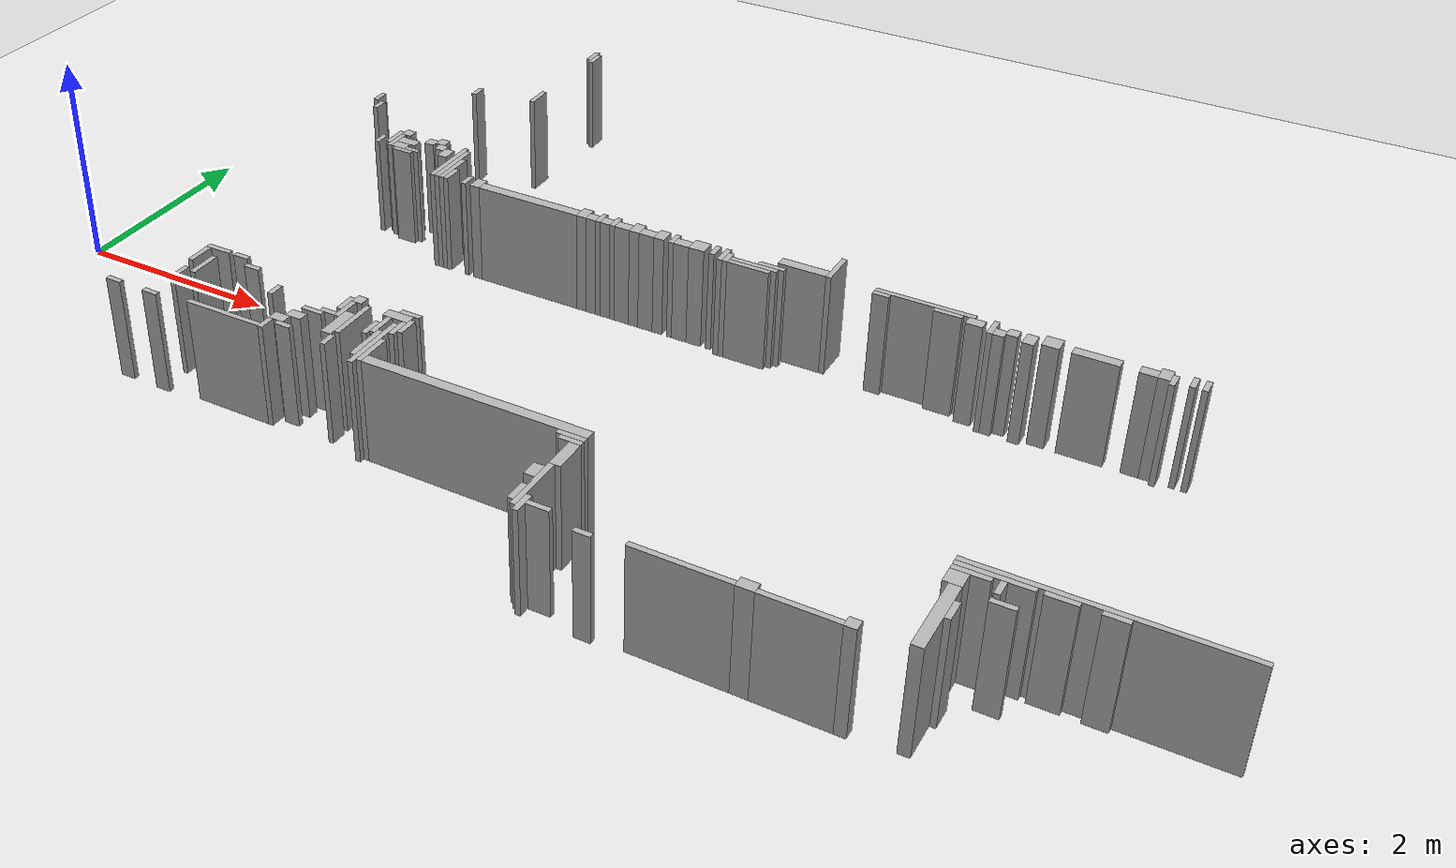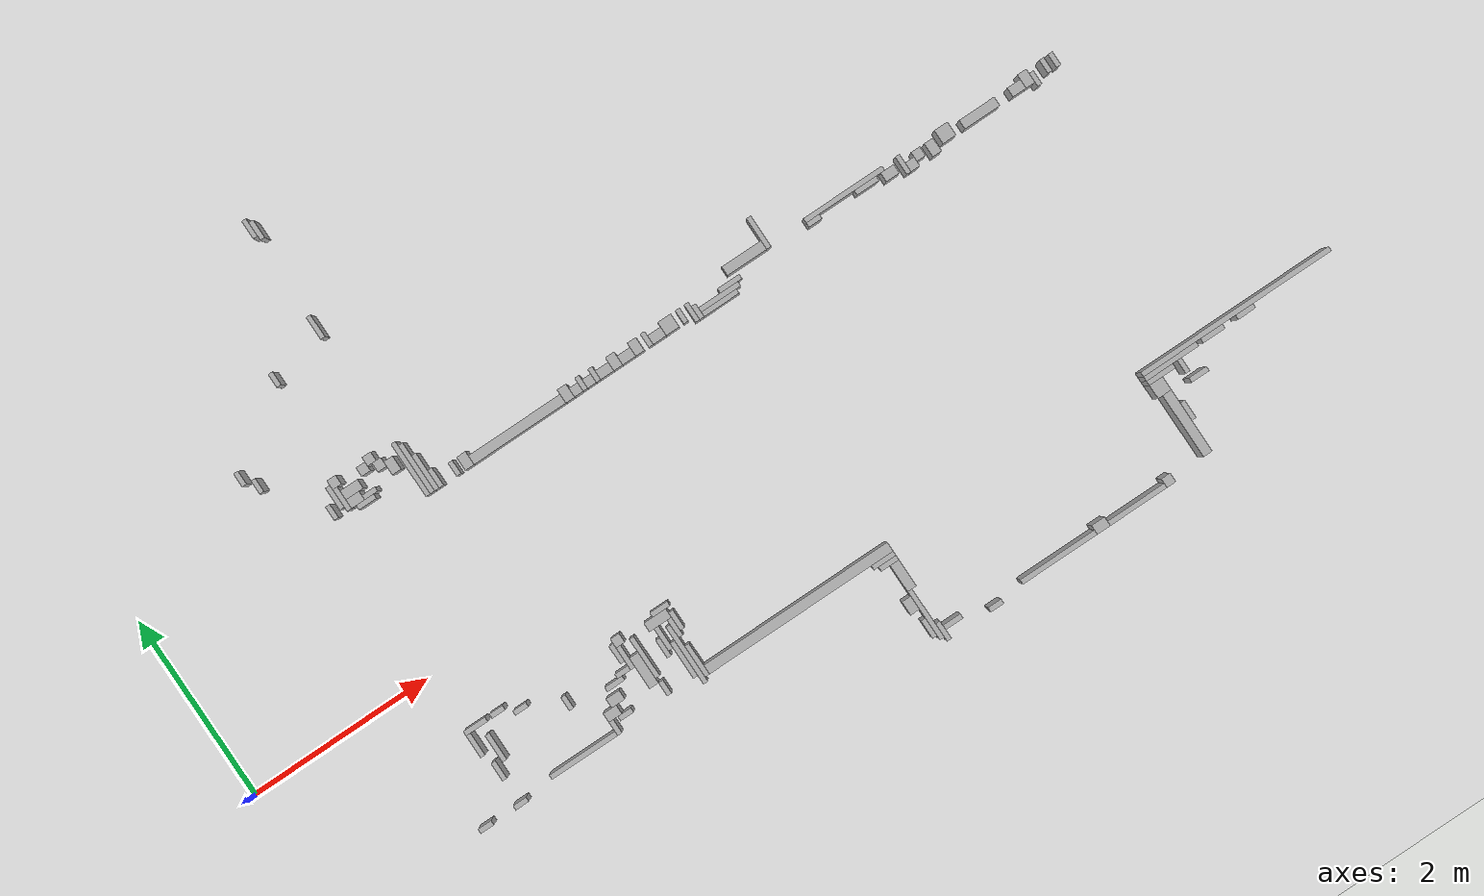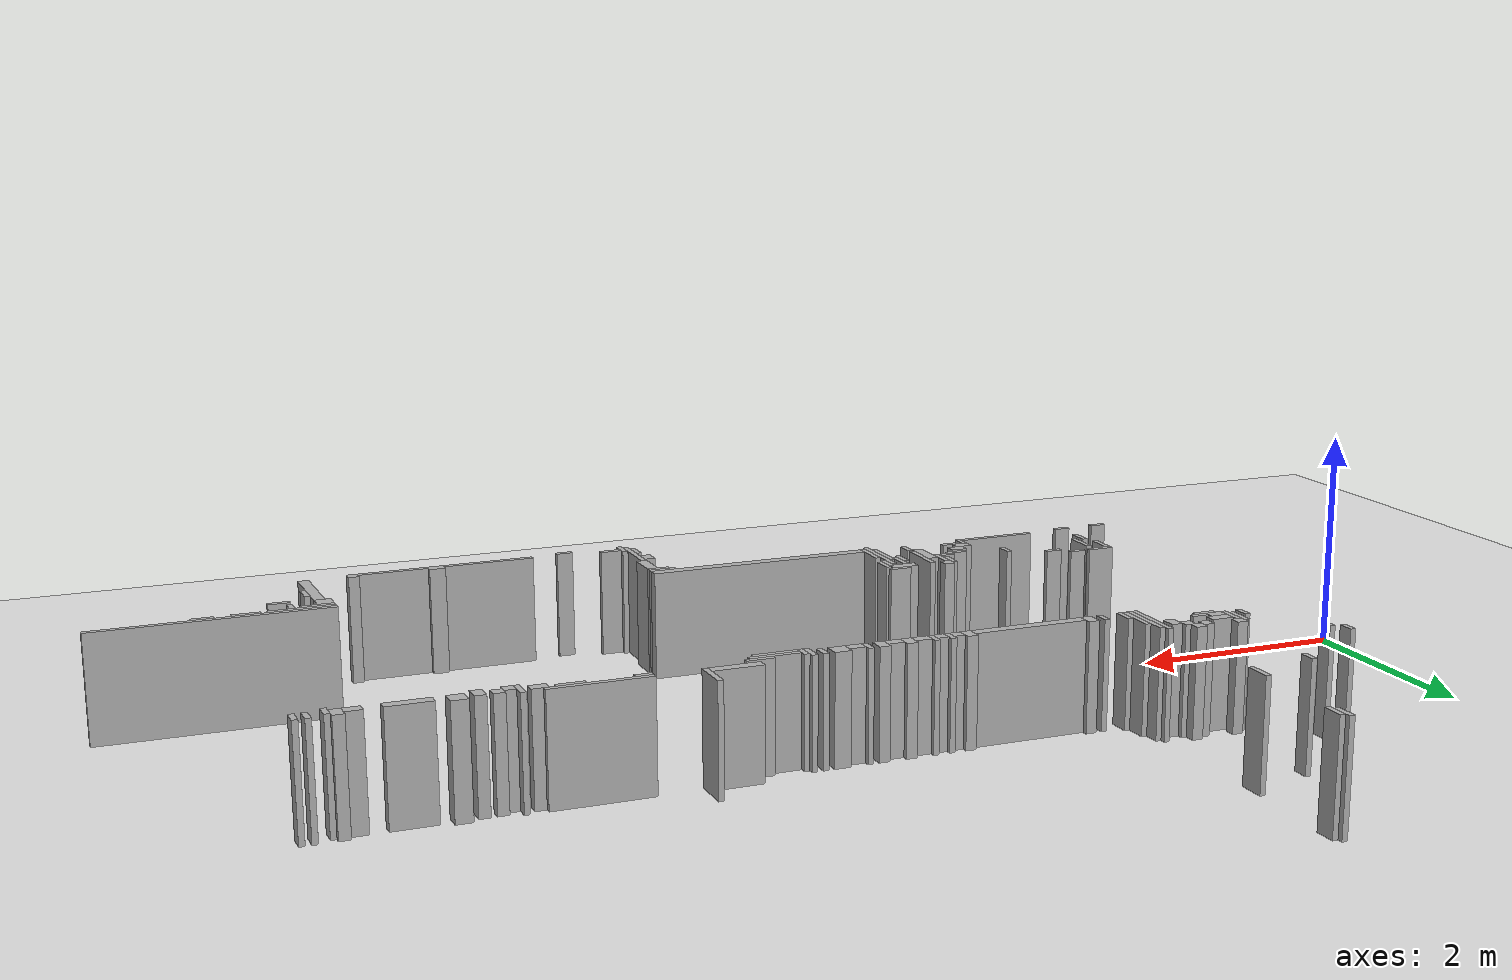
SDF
<sdf version="1.8">
 <world name="building">
  <model name="ground_plane">
   <static>true</static>
   <link name="link">
    <collision name="c"><geometry><plane><normal>0 0 1</normal><size>200 200</size></plane></geometry></collision>
    <visual name="v">
     <geometry><plane><normal>0 0 1</normal><size>200 200</size></plane></geometry>
     <material><ambient>0.9 0.9 0.9 1</ambient><diffuse>0.9 0.9 0.9 1</diffuse></material>
    </visual>
   </link>
  </model>
  <model name="walls">
   <static>true</static>
   <link name="wall_7">
    <pose>3.025 4.500 0.500 0 0 0</pose>
    <collision name="c"><geometry><box><size>0.050 0.200 1.000</size></box></geometry></collision>
    <visual name="v">
     <geometry><box><size>0.050 0.200 1.000</size></box></geometry>
     <material><ambient>0.6 0.6 0.6 1</ambient><diffuse>0.7 0.7 0.7 1</diffuse></material>
    </visual>
   </link>
   <link name="wall_8">
    <pose>3.075 4.450 0.500 0 0 0</pose>
    <collision name="c"><geometry><box><size>0.050 0.200 1.000</size></box></geometry></collision>
    <visual name="v">
     <geometry><box><size>0.050 0.200 1.000</size></box></geometry>
     <material><ambient>0.6 0.6 0.6 1</ambient><diffuse>0.7 0.7 0.7 1</diffuse></material>
    </visual>
   </link>
   <link name="wall_12">
    <pose>3.025 3.375 0.500 0 0 0</pose>
    <collision name="c"><geometry><box><size>0.050 0.250 1.000</size></box></geometry></collision>
    <visual name="v">
     <geometry><box><size>0.050 0.250 1.000</size></box></geometry>
     <material><ambient>0.6 0.6 0.6 1</ambient><diffuse>0.7 0.7 0.7 1</diffuse></material>
    </visual>
   </link>
   <link name="wall_14">
    <pose>2.425 3.175 0.500 0 0 0</pose>
    <collision name="c"><geometry><box><size>0.050 0.150 1.000</size></box></geometry></collision>
    <visual name="v">
     <geometry><box><size>0.050 0.150 1.000</size></box></geometry>
     <material><ambient>0.6 0.6 0.6 1</ambient><diffuse>0.7 0.7 0.7 1</diffuse></material>
    </visual>
   </link>
   <link name="wall_32">
    <pose>1.625 2.575 0.500 0 0 0</pose>
    <collision name="c"><geometry><box><size>0.050 0.150 1.000</size></box></geometry></collision>
    <visual name="v">
     <geometry><box><size>0.050 0.150 1.000</size></box></geometry>
     <material><ambient>0.6 0.6 0.6 1</ambient><diffuse>0.7 0.7 0.7 1</diffuse></material>
    </visual>
   </link>
   <link name="wall_38">
    <pose>1.725 2.425 0.500 0 0 0</pose>
    <collision name="c"><geometry><box><size>0.050 0.150 1.000</size></box></geometry></collision>
    <visual name="v">
     <geometry><box><size>0.050 0.150 1.000</size></box></geometry>
     <material><ambient>0.6 0.6 0.6 1</ambient><diffuse>0.7 0.7 0.7 1</diffuse></material>
    </visual>
   </link>
   <link name="wall_65">
    <pose>2.350 2.050 0.500 0 0 0</pose>
    <collision name="c"><geometry><box><size>0.100 0.100 1.000</size></box></geometry></collision>
    <visual name="v">
     <geometry><box><size>0.100 0.100 1.000</size></box></geometry>
     <material><ambient>0.6 0.6 0.6 1</ambient><diffuse>0.7 0.7 0.7 1</diffuse></material>
    </visual>
   </link>
   <link name="wall_66">
    <pose>2.750 2.050 0.500 0 0 0</pose>
    <collision name="c"><geometry><box><size>0.100 0.100 1.000</size></box></geometry></collision>
    <visual name="v">
     <geometry><box><size>0.100 0.100 1.000</size></box></geometry>
     <material><ambient>0.6 0.6 0.6 1</ambient><diffuse>0.7 0.7 0.7 1</diffuse></material>
    </visual>
   </link>
   <link name="wall_72">
    <pose>2.275 1.925 0.500 0 0 0</pose>
    <collision name="c"><geometry><box><size>0.050 0.250 1.000</size></box></geometry></collision>
    <visual name="v">
     <geometry><box><size>0.050 0.250 1.000</size></box></geometry>
     <material><ambient>0.6 0.6 0.6 1</ambient><diffuse>0.7 0.7 0.7 1</diffuse></material>
    </visual>
   </link>
   <link name="wall_73">
    <pose>2.650 2.000 0.500 0 0 0</pose>
    <collision name="c"><geometry><box><size>0.100 0.100 1.000</size></box></geometry></collision>
    <visual name="v">
     <geometry><box><size>0.100 0.100 1.000</size></box></geometry>
     <material><ambient>0.6 0.6 0.6 1</ambient><diffuse>0.7 0.7 0.7 1</diffuse></material>
    </visual>
   </link>
   <link name="wall_74">
    <pose>3.025 1.750 0.500 0 0 0</pose>
    <collision name="c"><geometry><box><size>0.050 0.600 1.000</size></box></geometry></collision>
    <visual name="v">
     <geometry><box><size>0.050 0.600 1.000</size></box></geometry>
     <material><ambient>0.6 0.6 0.6 1</ambient><diffuse>0.7 0.7 0.7 1</diffuse></material>
    </visual>
   </link>
   <link name="wall_77">
    <pose>2.325 1.875 0.500 0 0 0</pose>
    <collision name="c"><geometry><box><size>0.050 0.250 1.000</size></box></geometry></collision>
    <visual name="v">
     <geometry><box><size>0.050 0.250 1.000</size></box></geometry>
     <material><ambient>0.6 0.6 0.6 1</ambient><diffuse>0.7 0.7 0.7 1</diffuse></material>
    </visual>
   </link>
   <link name="wall_78">
    <pose>2.800 1.950 0.500 0 0 0</pose>
    <collision name="c"><geometry><box><size>0.100 0.100 1.000</size></box></geometry></collision>
    <visual name="v">
     <geometry><box><size>0.100 0.100 1.000</size></box></geometry>
     <material><ambient>0.6 0.6 0.6 1</ambient><diffuse>0.7 0.7 0.7 1</diffuse></material>
    </visual>
   </link>
   <link name="wall_79">
    <pose>3.075 1.725 0.500 0 0 0</pose>
    <collision name="c"><geometry><box><size>0.050 0.550 1.000</size></box></geometry></collision>
    <visual name="v">
     <geometry><box><size>0.050 0.550 1.000</size></box></geometry>
     <material><ambient>0.6 0.6 0.6 1</ambient><diffuse>0.7 0.7 0.7 1</diffuse></material>
    </visual>
   </link>
   <link name="wall_83">
    <pose>2.450 1.900 0.500 0 0 0</pose>
    <collision name="c"><geometry><box><size>0.200 0.100 1.000</size></box></geometry></collision>
    <visual name="v">
     <geometry><box><size>0.200 0.100 1.000</size></box></geometry>
     <material><ambient>0.6 0.6 0.6 1</ambient><diffuse>0.7 0.7 0.7 1</diffuse></material>
    </visual>
   </link>
   <link name="wall_84">
    <pose>2.900 1.875 0.500 0 0 0</pose>
    <collision name="c"><geometry><box><size>0.100 0.150 1.000</size></box></geometry></collision>
    <visual name="v">
     <geometry><box><size>0.100 0.150 1.000</size></box></geometry>
     <material><ambient>0.6 0.6 0.6 1</ambient><diffuse>0.7 0.7 0.7 1</diffuse></material>
    </visual>
   </link>
   <link name="wall_85">
    <pose>7.025 1.775 0.500 0 0 0</pose>
    <collision name="c"><geometry><box><size>0.050 0.350 1.000</size></box></geometry></collision>
    <visual name="v">
     <geometry><box><size>0.050 0.350 1.000</size></box></geometry>
     <material><ambient>0.6 0.6 0.6 1</ambient><diffuse>0.7 0.7 0.7 1</diffuse></material>
    </visual>
   </link>
   <link name="wall_87">
    <pose>2.175 1.825 0.500 0 0 0</pose>
    <collision name="c"><geometry><box><size>0.050 0.150 1.000</size></box></geometry></collision>
    <visual name="v">
     <geometry><box><size>0.050 0.150 1.000</size></box></geometry>
     <material><ambient>0.6 0.6 0.6 1</ambient><diffuse>0.7 0.7 0.7 1</diffuse></material>
    </visual>
   </link>
   <link name="wall_91">
    <pose>2.425 1.800 0.500 0 0 0</pose>
    <collision name="c"><geometry><box><size>0.150 0.100 1.000</size></box></geometry></collision>
    <visual name="v">
     <geometry><box><size>0.150 0.100 1.000</size></box></geometry>
     <material><ambient>0.6 0.6 0.6 1</ambient><diffuse>0.7 0.7 0.7 1</diffuse></material>
    </visual>
   </link>
   <link name="wall_92">
    <pose>3.125 1.650 0.500 0 0 0</pose>
    <collision name="c"><geometry><box><size>0.050 0.400 1.000</size></box></geometry></collision>
    <visual name="v">
     <geometry><box><size>0.050 0.400 1.000</size></box></geometry>
     <material><ambient>0.6 0.6 0.6 1</ambient><diffuse>0.7 0.7 0.7 1</diffuse></material>
    </visual>
   </link>
   <link name="wall_95">
    <pose>2.575 1.775 0.500 0 0 0</pose>
    <collision name="c"><geometry><box><size>0.150 0.050 1.000</size></box></geometry></collision>
    <visual name="v">
     <geometry><box><size>0.150 0.050 1.000</size></box></geometry>
     <material><ambient>0.6 0.6 0.6 1</ambient><diffuse>0.7 0.7 0.7 1</diffuse></material>
    </visual>
   </link>
   <link name="wall_97">
    <pose>2.500 1.725 0.500 0 0 0</pose>
    <collision name="c"><geometry><box><size>0.200 0.050 1.000</size></box></geometry></collision>
    <visual name="v">
     <geometry><box><size>0.200 0.050 1.000</size></box></geometry>
     <material><ambient>0.6 0.6 0.6 1</ambient><diffuse>0.7 0.7 0.7 1</diffuse></material>
    </visual>
   </link>
   <link name="wall_102">
    <pose>6.775 1.650 0.500 0 0 0</pose>
    <collision name="c"><geometry><box><size>0.450 0.100 1.000</size></box></geometry></collision>
    <visual name="v">
     <geometry><box><size>0.450 0.100 1.000</size></box></geometry>
     <material><ambient>0.6 0.6 0.6 1</ambient><diffuse>0.7 0.7 0.7 1</diffuse></material>
    </visual>
   </link>
   <link name="wall_119">
    <pose>3.175 1.550 0.500 0 0 0</pose>
    <collision name="c"><geometry><box><size>0.050 0.200 1.000</size></box></geometry></collision>
    <visual name="v">
     <geometry><box><size>0.050 0.200 1.000</size></box></geometry>
     <material><ambient>0.6 0.6 0.6 1</ambient><diffuse>0.7 0.7 0.7 1</diffuse></material>
    </visual>
   </link>
   <link name="wall_120">
    <pose>7.900 1.625 0.500 0 0 0</pose>
    <collision name="c"><geometry><box><size>0.900 0.050 1.000</size></box></geometry></collision>
    <visual name="v">
     <geometry><box><size>0.900 0.050 1.000</size></box></geometry>
     <material><ambient>0.6 0.6 0.6 1</ambient><diffuse>0.7 0.7 0.7 1</diffuse></material>
    </visual>
   </link>
   <link name="wall_121">
    <pose>8.525 1.550 0.500 0 0 0</pose>
    <collision name="c"><geometry><box><size>0.050 0.200 1.000</size></box></geometry></collision>
    <visual name="v">
     <geometry><box><size>0.050 0.200 1.000</size></box></geometry>
     <material><ambient>0.6 0.6 0.6 1</ambient><diffuse>0.7 0.7 0.7 1</diffuse></material>
    </visual>
   </link>
   <link name="wall_122">
    <pose>9.025 1.575 0.500 0 0 0</pose>
    <collision name="c"><geometry><box><size>0.150 0.150 1.000</size></box></geometry></collision>
    <visual name="v">
     <geometry><box><size>0.150 0.150 1.000</size></box></geometry>
     <material><ambient>0.6 0.6 0.6 1</ambient><diffuse>0.7 0.7 0.7 1</diffuse></material>
    </visual>
   </link>
   <link name="wall_123">
    <pose>9.950 1.575 0.500 0 0 0</pose>
    <collision name="c"><geometry><box><size>0.100 0.150 1.000</size></box></geometry></collision>
    <visual name="v">
     <geometry><box><size>0.100 0.150 1.000</size></box></geometry>
     <material><ambient>0.6 0.6 0.6 1</ambient><diffuse>0.7 0.7 0.7 1</diffuse></material>
    </visual>
   </link>
   <link name="wall_124">
    <pose>10.175 1.575 0.500 0 0 0</pose>
    <collision name="c"><geometry><box><size>0.050 0.150 1.000</size></box></geometry></collision>
    <visual name="v">
     <geometry><box><size>0.050 0.150 1.000</size></box></geometry>
     <material><ambient>0.6 0.6 0.6 1</ambient><diffuse>0.7 0.7 0.7 1</diffuse></material>
    </visual>
   </link>
   <link name="wall_125">
    <pose>10.275 1.575 0.500 0 0 0</pose>
    <collision name="c"><geometry><box><size>0.050 0.150 1.000</size></box></geometry></collision>
    <visual name="v">
     <geometry><box><size>0.050 0.150 1.000</size></box></geometry>
     <material><ambient>0.6 0.6 0.6 1</ambient><diffuse>0.7 0.7 0.7 1</diffuse></material>
    </visual>
   </link>
   <link name="wall_147">
    <pose>3.375 1.525 0.500 0 0 0</pose>
    <collision name="c"><geometry><box><size>0.050 0.150 1.000</size></box></geometry></collision>
    <visual name="v">
     <geometry><box><size>0.050 0.150 1.000</size></box></geometry>
     <material><ambient>0.6 0.6 0.6 1</ambient><diffuse>0.7 0.7 0.7 1</diffuse></material>
    </visual>
   </link>
   <link name="wall_148">
    <pose>3.500 1.525 0.500 0 0 0</pose>
    <collision name="c"><geometry><box><size>0.100 0.150 1.000</size></box></geometry></collision>
    <visual name="v">
     <geometry><box><size>0.100 0.150 1.000</size></box></geometry>
     <material><ambient>0.6 0.6 0.6 1</ambient><diffuse>0.7 0.7 0.7 1</diffuse></material>
    </visual>
   </link>
   <link name="wall_149">
    <pose>4.650 1.525 0.500 0 0 0</pose>
    <collision name="c"><geometry><box><size>0.100 0.150 1.000</size></box></geometry></collision>
    <visual name="v">
     <geometry><box><size>0.100 0.150 1.000</size></box></geometry>
     <material><ambient>0.6 0.6 0.6 1</ambient><diffuse>0.7 0.7 0.7 1</diffuse></material>
    </visual>
   </link>
   <link name="wall_150">
    <pose>4.825 1.525 0.500 0 0 0</pose>
    <collision name="c"><geometry><box><size>0.050 0.150 1.000</size></box></geometry></collision>
    <visual name="v">
     <geometry><box><size>0.050 0.150 1.000</size></box></geometry>
     <material><ambient>0.6 0.6 0.6 1</ambient><diffuse>0.7 0.7 0.7 1</diffuse></material>
    </visual>
   </link>
   <link name="wall_151">
    <pose>4.975 1.525 0.500 0 0 0</pose>
    <collision name="c"><geometry><box><size>0.050 0.150 1.000</size></box></geometry></collision>
    <visual name="v">
     <geometry><box><size>0.050 0.150 1.000</size></box></geometry>
     <material><ambient>0.6 0.6 0.6 1</ambient><diffuse>0.7 0.7 0.7 1</diffuse></material>
    </visual>
   </link>
   <link name="wall_152">
    <pose>5.200 1.525 0.500 0 0 0</pose>
    <collision name="c"><geometry><box><size>0.100 0.150 1.000</size></box></geometry></collision>
    <visual name="v">
     <geometry><box><size>0.100 0.150 1.000</size></box></geometry>
     <material><ambient>0.6 0.6 0.6 1</ambient><diffuse>0.7 0.7 0.7 1</diffuse></material>
    </visual>
   </link>
   <link name="wall_153">
    <pose>5.450 1.525 0.500 0 0 0</pose>
    <collision name="c"><geometry><box><size>0.100 0.150 1.000</size></box></geometry></collision>
    <visual name="v">
     <geometry><box><size>0.100 0.150 1.000</size></box></geometry>
     <material><ambient>0.6 0.6 0.6 1</ambient><diffuse>0.7 0.7 0.7 1</diffuse></material>
    </visual>
   </link>
   <link name="wall_154">
    <pose>5.575 1.525 0.500 0 0 0</pose>
    <collision name="c"><geometry><box><size>0.050 0.150 1.000</size></box></geometry></collision>
    <visual name="v">
     <geometry><box><size>0.050 0.150 1.000</size></box></geometry>
     <material><ambient>0.6 0.6 0.6 1</ambient><diffuse>0.7 0.7 0.7 1</diffuse></material>
    </visual>
   </link>
   <link name="wall_155">
    <pose>5.825 1.525 0.500 0 0 0</pose>
    <collision name="c"><geometry><box><size>0.150 0.150 1.000</size></box></geometry></collision>
    <visual name="v">
     <geometry><box><size>0.150 0.150 1.000</size></box></geometry>
     <material><ambient>0.6 0.6 0.6 1</ambient><diffuse>0.7 0.7 0.7 1</diffuse></material>
    </visual>
   </link>
   <link name="wall_156">
    <pose>5.975 1.525 0.500 0 0 0</pose>
    <collision name="c"><geometry><box><size>0.050 0.150 1.000</size></box></geometry></collision>
    <visual name="v">
     <geometry><box><size>0.050 0.150 1.000</size></box></geometry>
     <material><ambient>0.6 0.6 0.6 1</ambient><diffuse>0.7 0.7 0.7 1</diffuse></material>
    </visual>
   </link>
   <link name="wall_157">
    <pose>6.075 1.500 0.500 0 0 0</pose>
    <collision name="c"><geometry><box><size>0.050 0.200 1.000</size></box></geometry></collision>
    <visual name="v">
     <geometry><box><size>0.050 0.200 1.000</size></box></geometry>
     <material><ambient>0.6 0.6 0.6 1</ambient><diffuse>0.7 0.7 0.7 1</diffuse></material>
    </visual>
   </link>
   <link name="wall_158">
    <pose>7.525 1.575 0.500 0 0 0</pose>
    <collision name="c"><geometry><box><size>0.150 0.050 1.000</size></box></geometry></collision>
    <visual name="v">
     <geometry><box><size>0.150 0.050 1.000</size></box></geometry>
     <material><ambient>0.6 0.6 0.6 1</ambient><diffuse>0.7 0.7 0.7 1</diffuse></material>
    </visual>
   </link>
   <link name="wall_159">
    <pose>8.125 1.575 0.500 0 0 0</pose>
    <collision name="c"><geometry><box><size>0.250 0.050 1.000</size></box></geometry></collision>
    <visual name="v">
     <geometry><box><size>0.250 0.050 1.000</size></box></geometry>
     <material><ambient>0.6 0.6 0.6 1</ambient><diffuse>0.7 0.7 0.7 1</diffuse></material>
    </visual>
   </link>
   <link name="wall_160">
    <pose>8.375 1.550 0.500 0 0 0</pose>
    <collision name="c"><geometry><box><size>0.150 0.100 1.000</size></box></geometry></collision>
    <visual name="v">
     <geometry><box><size>0.150 0.100 1.000</size></box></geometry>
     <material><ambient>0.6 0.6 0.6 1</ambient><diffuse>0.7 0.7 0.7 1</diffuse></material>
    </visual>
   </link>
   <link name="wall_161">
    <pose>8.700 1.550 0.500 0 0 0</pose>
    <collision name="c"><geometry><box><size>0.100 0.100 1.000</size></box></geometry></collision>
    <visual name="v">
     <geometry><box><size>0.100 0.100 1.000</size></box></geometry>
     <material><ambient>0.6 0.6 0.6 1</ambient><diffuse>0.7 0.7 0.7 1</diffuse></material>
    </visual>
   </link>
   <link name="wall_162">
    <pose>8.850 1.525 0.500 0 0 0</pose>
    <collision name="c"><geometry><box><size>0.100 0.150 1.000</size></box></geometry></collision>
    <visual name="v">
     <geometry><box><size>0.100 0.150 1.000</size></box></geometry>
     <material><ambient>0.6 0.6 0.6 1</ambient><diffuse>0.7 0.7 0.7 1</diffuse></material>
    </visual>
   </link>
   <link name="wall_163">
    <pose>9.400 1.550 0.500 0 0 0</pose>
    <collision name="c"><geometry><box><size>0.400 0.100 1.000</size></box></geometry></collision>
    <visual name="v">
     <geometry><box><size>0.400 0.100 1.000</size></box></geometry>
     <material><ambient>0.6 0.6 0.6 1</ambient><diffuse>0.7 0.7 0.7 1</diffuse></material>
    </visual>
   </link>
   <link name="wall_164">
    <pose>9.825 1.550 0.500 0 0 0</pose>
    <collision name="c"><geometry><box><size>0.150 0.100 1.000</size></box></geometry></collision>
    <visual name="v">
     <geometry><box><size>0.150 0.100 1.000</size></box></geometry>
     <material><ambient>0.6 0.6 0.6 1</ambient><diffuse>0.7 0.7 0.7 1</diffuse></material>
    </visual>
   </link>
   <link name="wall_165">
    <pose>10.025 1.525 0.500 0 0 0</pose>
    <collision name="c"><geometry><box><size>0.050 0.150 1.000</size></box></geometry></collision>
    <visual name="v">
     <geometry><box><size>0.050 0.150 1.000</size></box></geometry>
     <material><ambient>0.6 0.6 0.6 1</ambient><diffuse>0.7 0.7 0.7 1</diffuse></material>
    </visual>
   </link>
   <link name="wall_181">
    <pose>4.075 1.500 0.500 0 0 0</pose>
    <collision name="c"><geometry><box><size>1.050 0.100 1.000</size></box></geometry></collision>
    <visual name="v">
     <geometry><box><size>1.050 0.100 1.000</size></box></geometry>
     <material><ambient>0.6 0.6 0.6 1</ambient><diffuse>0.7 0.7 0.7 1</diffuse></material>
    </visual>
   </link>
   <link name="wall_182">
    <pose>4.750 1.500 0.500 0 0 0</pose>
    <collision name="c"><geometry><box><size>0.100 0.100 1.000</size></box></geometry></collision>
    <visual name="v">
     <geometry><box><size>0.100 0.100 1.000</size></box></geometry>
     <material><ambient>0.6 0.6 0.6 1</ambient><diffuse>0.7 0.7 0.7 1</diffuse></material>
    </visual>
   </link>
   <link name="wall_183">
    <pose>4.900 1.500 0.500 0 0 0</pose>
    <collision name="c"><geometry><box><size>0.100 0.100 1.000</size></box></geometry></collision>
    <visual name="v">
     <geometry><box><size>0.100 0.100 1.000</size></box></geometry>
     <material><ambient>0.6 0.6 0.6 1</ambient><diffuse>0.7 0.7 0.7 1</diffuse></material>
    </visual>
   </link>
   <link name="wall_184">
    <pose>5.075 1.500 0.500 0 0 0</pose>
    <collision name="c"><geometry><box><size>0.150 0.100 1.000</size></box></geometry></collision>
    <visual name="v">
     <geometry><box><size>0.150 0.100 1.000</size></box></geometry>
     <material><ambient>0.6 0.6 0.6 1</ambient><diffuse>0.7 0.7 0.7 1</diffuse></material>
    </visual>
   </link>
   <link name="wall_185">
    <pose>5.325 1.500 0.500 0 0 0</pose>
    <collision name="c"><geometry><box><size>0.150 0.100 1.000</size></box></geometry></collision>
    <visual name="v">
     <geometry><box><size>0.150 0.100 1.000</size></box></geometry>
     <material><ambient>0.6 0.6 0.6 1</ambient><diffuse>0.7 0.7 0.7 1</diffuse></material>
    </visual>
   </link>
   <link name="wall_186">
    <pose>5.675 1.500 0.500 0 0 0</pose>
    <collision name="c"><geometry><box><size>0.150 0.100 1.000</size></box></geometry></collision>
    <visual name="v">
     <geometry><box><size>0.150 0.100 1.000</size></box></geometry>
     <material><ambient>0.6 0.6 0.6 1</ambient><diffuse>0.7 0.7 0.7 1</diffuse></material>
    </visual>
   </link>
   <link name="wall_187">
    <pose>6.125 1.475 0.500 0 0 0</pose>
    <collision name="c"><geometry><box><size>0.050 0.150 1.000</size></box></geometry></collision>
    <visual name="v">
     <geometry><box><size>0.050 0.150 1.000</size></box></geometry>
     <material><ambient>0.6 0.6 0.6 1</ambient><diffuse>0.7 0.7 0.7 1</diffuse></material>
    </visual>
   </link>
   <link name="wall_188">
    <pose>6.525 1.525 0.500 0 0 0</pose>
    <collision name="c"><geometry><box><size>0.250 0.050 1.000</size></box></geometry></collision>
    <visual name="v">
     <geometry><box><size>0.250 0.050 1.000</size></box></geometry>
     <material><ambient>0.6 0.6 0.6 1</ambient><diffuse>0.7 0.7 0.7 1</diffuse></material>
    </visual>
   </link>
   <link name="wall_189">
    <pose>8.600 1.500 0.500 0 0 0</pose>
    <collision name="c"><geometry><box><size>0.100 0.100 1.000</size></box></geometry></collision>
    <visual name="v">
     <geometry><box><size>0.100 0.100 1.000</size></box></geometry>
     <material><ambient>0.6 0.6 0.6 1</ambient><diffuse>0.7 0.7 0.7 1</diffuse></material>
    </visual>
   </link>
   <link name="wall_214">
    <pose>6.375 1.475 0.500 0 0 0</pose>
    <collision name="c"><geometry><box><size>0.450 0.050 1.000</size></box></geometry></collision>
    <visual name="v">
     <geometry><box><size>0.450 0.050 1.000</size></box></geometry>
     <material><ambient>0.6 0.6 0.6 1</ambient><diffuse>0.7 0.7 0.7 1</diffuse></material>
    </visual>
   </link>
   <link name="wall_233">
    <pose>6.350 1.425 0.500 0 0 0</pose>
    <collision name="c"><geometry><box><size>0.400 0.050 1.000</size></box></geometry></collision>
    <visual name="v">
     <geometry><box><size>0.400 0.050 1.000</size></box></geometry>
     <material><ambient>0.6 0.6 0.6 1</ambient><diffuse>0.7 0.7 0.7 1</diffuse></material>
    </visual>
   </link>
   <link name="wall_324">
    <pose>2.175 -0.625 0.500 0 0 0</pose>
    <collision name="c"><geometry><box><size>0.250 0.050 1.000</size></box></geometry></collision>
    <visual name="v">
     <geometry><box><size>0.250 0.050 1.000</size></box></geometry>
     <material><ambient>0.6 0.6 0.6 1</ambient><diffuse>0.7 0.7 0.7 1</diffuse></material>
    </visual>
   </link>
   <link name="wall_325">
    <pose>2.425 -0.625 0.500 0 0 0</pose>
    <collision name="c"><geometry><box><size>0.150 0.050 1.000</size></box></geometry></collision>
    <visual name="v">
     <geometry><box><size>0.150 0.050 1.000</size></box></geometry>
     <material><ambient>0.6 0.6 0.6 1</ambient><diffuse>0.7 0.7 0.7 1</diffuse></material>
    </visual>
   </link>
   <link name="wall_326">
    <pose>2.075 -0.775 0.500 0 0 0</pose>
    <collision name="c"><geometry><box><size>0.050 0.250 1.000</size></box></geometry></collision>
    <visual name="v">
     <geometry><box><size>0.050 0.250 1.000</size></box></geometry>
     <material><ambient>0.6 0.6 0.6 1</ambient><diffuse>0.7 0.7 0.7 1</diffuse></material>
    </visual>
   </link>
   <link name="wall_327">
    <pose>3.750 -0.700 0.500 0 0 0</pose>
    <collision name="c"><geometry><box><size>0.100 0.100 1.000</size></box></geometry></collision>
    <visual name="v">
     <geometry><box><size>0.100 0.100 1.000</size></box></geometry>
     <material><ambient>0.6 0.6 0.6 1</ambient><diffuse>0.7 0.7 0.7 1</diffuse></material>
    </visual>
   </link>
   <link name="wall_328">
    <pose>4.250 -0.675 0.500 0 0 0</pose>
    <collision name="c"><geometry><box><size>0.200 0.050 1.000</size></box></geometry></collision>
    <visual name="v">
     <geometry><box><size>0.200 0.050 1.000</size></box></geometry>
     <material><ambient>0.6 0.6 0.6 1</ambient><diffuse>0.7 0.7 0.7 1</diffuse></material>
    </visual>
   </link>
   <link name="wall_329">
    <pose>2.625 -0.725 0.500 0 0 0</pose>
    <collision name="c"><geometry><box><size>0.150 0.050 1.000</size></box></geometry></collision>
    <visual name="v">
     <geometry><box><size>0.150 0.050 1.000</size></box></geometry>
     <material><ambient>0.6 0.6 0.6 1</ambient><diffuse>0.7 0.7 0.7 1</diffuse></material>
    </visual>
   </link>
   <link name="wall_330">
    <pose>3.675 -0.800 0.500 0 0 0</pose>
    <collision name="c"><geometry><box><size>0.050 0.200 1.000</size></box></geometry></collision>
    <visual name="v">
     <geometry><box><size>0.050 0.200 1.000</size></box></geometry>
     <material><ambient>0.6 0.6 0.6 1</ambient><diffuse>0.7 0.7 0.7 1</diffuse></material>
    </visual>
   </link>
   <link name="wall_331">
    <pose>4.175 -0.750 0.500 0 0 0</pose>
    <collision name="c"><geometry><box><size>0.250 0.100 1.000</size></box></geometry></collision>
    <visual name="v">
     <geometry><box><size>0.250 0.100 1.000</size></box></geometry>
     <material><ambient>0.6 0.6 0.6 1</ambient><diffuse>0.7 0.7 0.7 1</diffuse></material>
    </visual>
   </link>
   <link name="wall_333">
    <pose>2.225 -0.900 0.500 0 0 0</pose>
    <collision name="c"><geometry><box><size>0.050 0.300 1.000</size></box></geometry></collision>
    <visual name="v">
     <geometry><box><size>0.050 0.300 1.000</size></box></geometry>
     <material><ambient>0.6 0.6 0.6 1</ambient><diffuse>0.7 0.7 0.7 1</diffuse></material>
    </visual>
   </link>
   <link name="wall_334">
    <pose>3.725 -0.875 0.500 0 0 0</pose>
    <collision name="c"><geometry><box><size>0.050 0.250 1.000</size></box></geometry></collision>
    <visual name="v">
     <geometry><box><size>0.050 0.250 1.000</size></box></geometry>
     <material><ambient>0.6 0.6 0.6 1</ambient><diffuse>0.7 0.7 0.7 1</diffuse></material>
    </visual>
   </link>
   <link name="wall_335">
    <pose>3.875 -0.975 0.500 0 0 0</pose>
    <collision name="c"><geometry><box><size>0.050 0.450 1.000</size></box></geometry></collision>
    <visual name="v">
     <geometry><box><size>0.050 0.450 1.000</size></box></geometry>
     <material><ambient>0.6 0.6 0.6 1</ambient><diffuse>0.7 0.7 0.7 1</diffuse></material>
    </visual>
   </link>
   <link name="wall_336">
    <pose>4.325 -0.850 0.500 0 0 0</pose>
    <collision name="c"><geometry><box><size>0.050 0.200 1.000</size></box></geometry></collision>
    <visual name="v">
     <geometry><box><size>0.050 0.200 1.000</size></box></geometry>
     <material><ambient>0.6 0.6 0.6 1</ambient><diffuse>0.7 0.7 0.7 1</diffuse></material>
    </visual>
   </link>
   <link name="wall_337">
    <pose>4.125 -0.925 0.500 0 0 0</pose>
    <collision name="c"><geometry><box><size>0.050 0.250 1.000</size></box></geometry></collision>
    <visual name="v">
     <geometry><box><size>0.050 0.250 1.000</size></box></geometry>
     <material><ambient>0.6 0.6 0.6 1</ambient><diffuse>0.7 0.7 0.7 1</diffuse></material>
    </visual>
   </link>
   <link name="wall_338">
    <pose>4.275 -0.900 0.500 0 0 0</pose>
    <collision name="c"><geometry><box><size>0.050 0.200 1.000</size></box></geometry></collision>
    <visual name="v">
     <geometry><box><size>0.050 0.200 1.000</size></box></geometry>
     <material><ambient>0.6 0.6 0.6 1</ambient><diffuse>0.7 0.7 0.7 1</diffuse></material>
    </visual>
   </link>
   <link name="wall_339">
    <pose>3.025 -0.925 0.500 0 0 0</pose>
    <collision name="c"><geometry><box><size>0.050 0.150 1.000</size></box></geometry></collision>
    <visual name="v">
     <geometry><box><size>0.050 0.150 1.000</size></box></geometry>
     <material><ambient>0.6 0.6 0.6 1</ambient><diffuse>0.7 0.7 0.7 1</diffuse></material>
    </visual>
   </link>
   <link name="wall_340">
    <pose>4.225 -1.175 0.500 0 0 0</pose>
    <collision name="c"><geometry><box><size>0.050 0.650 1.000</size></box></geometry></collision>
    <visual name="v">
     <geometry><box><size>0.050 0.650 1.000</size></box></geometry>
     <material><ambient>0.6 0.6 0.6 1</ambient><diffuse>0.7 0.7 0.7 1</diffuse></material>
    </visual>
   </link>
   <link name="wall_341">
    <pose>3.800 -1.075 0.500 0 0 0</pose>
    <collision name="c"><geometry><box><size>0.100 0.350 1.000</size></box></geometry></collision>
    <visual name="v">
     <geometry><box><size>0.100 0.350 1.000</size></box></geometry>
     <material><ambient>0.6 0.6 0.6 1</ambient><diffuse>0.7 0.7 0.7 1</diffuse></material>
    </visual>
   </link>
   <link name="wall_342">
    <pose>4.075 -1.000 0.500 0 0 0</pose>
    <collision name="c"><geometry><box><size>0.050 0.200 1.000</size></box></geometry></collision>
    <visual name="v">
     <geometry><box><size>0.050 0.200 1.000</size></box></geometry>
     <material><ambient>0.6 0.6 0.6 1</ambient><diffuse>0.7 0.7 0.7 1</diffuse></material>
    </visual>
   </link>
   <link name="wall_344">
    <pose>3.625 -0.975 0.500 0 0 0</pose>
    <collision name="c"><geometry><box><size>0.150 0.050 1.000</size></box></geometry></collision>
    <visual name="v">
     <geometry><box><size>0.150 0.050 1.000</size></box></geometry>
     <material><ambient>0.6 0.6 0.6 1</ambient><diffuse>0.7 0.7 0.7 1</diffuse></material>
    </visual>
   </link>
   <link name="wall_345">
    <pose>2.125 -1.100 0.500 0 0 0</pose>
    <collision name="c"><geometry><box><size>0.050 0.200 1.000</size></box></geometry></collision>
    <visual name="v">
     <geometry><box><size>0.050 0.200 1.000</size></box></geometry>
     <material><ambient>0.6 0.6 0.6 1</ambient><diffuse>0.7 0.7 0.7 1</diffuse></material>
    </visual>
   </link>
   <link name="wall_346">
    <pose>3.500 -1.025 0.500 0 0 0</pose>
    <collision name="c"><geometry><box><size>0.200 0.050 1.000</size></box></geometry></collision>
    <visual name="v">
     <geometry><box><size>0.200 0.050 1.000</size></box></geometry>
     <material><ambient>0.6 0.6 0.6 1</ambient><diffuse>0.7 0.7 0.7 1</diffuse></material>
    </visual>
   </link>
   <link name="wall_347">
    <pose>4.175 -1.200 0.500 0 0 0</pose>
    <collision name="c"><geometry><box><size>0.050 0.400 1.000</size></box></geometry></collision>
    <visual name="v">
     <geometry><box><size>0.050 0.400 1.000</size></box></geometry>
     <material><ambient>0.6 0.6 0.6 1</ambient><diffuse>0.7 0.7 0.7 1</diffuse></material>
    </visual>
   </link>
   <link name="wall_350">
    <pose>3.425 -1.150 0.500 0 0 0</pose>
    <collision name="c"><geometry><box><size>0.150 0.100 1.000</size></box></geometry></collision>
    <visual name="v">
     <geometry><box><size>0.150 0.100 1.000</size></box></geometry>
     <material><ambient>0.6 0.6 0.6 1</ambient><diffuse>0.7 0.7 0.7 1</diffuse></material>
    </visual>
   </link>
   <link name="wall_351">
    <pose>4.275 -1.275 0.500 0 0 0</pose>
    <collision name="c"><geometry><box><size>0.050 0.350 1.000</size></box></geometry></collision>
    <visual name="v">
     <geometry><box><size>0.050 0.350 1.000</size></box></geometry>
     <material><ambient>0.6 0.6 0.6 1</ambient><diffuse>0.7 0.7 0.7 1</diffuse></material>
    </visual>
   </link>
   <link name="wall_354">
    <pose>3.325 -1.250 0.500 0 0 0</pose>
    <collision name="c"><geometry><box><size>0.150 0.100 1.000</size></box></geometry></collision>
    <visual name="v">
     <geometry><box><size>0.150 0.100 1.000</size></box></geometry>
     <material><ambient>0.6 0.6 0.6 1</ambient><diffuse>0.7 0.7 0.7 1</diffuse></material>
    </visual>
   </link>
   <link name="wall_355">
    <pose>3.875 -1.325 0.500 0 0 0</pose>
    <collision name="c"><geometry><box><size>0.050 0.150 1.000</size></box></geometry></collision>
    <visual name="v">
     <geometry><box><size>0.050 0.150 1.000</size></box></geometry>
     <material><ambient>0.6 0.6 0.6 1</ambient><diffuse>0.7 0.7 0.7 1</diffuse></material>
    </visual>
   </link>
   <link name="wall_359">
    <pose>3.275 -1.375 0.500 0 0 0</pose>
    <collision name="c"><geometry><box><size>0.050 0.150 1.000</size></box></geometry></collision>
    <visual name="v">
     <geometry><box><size>0.050 0.150 1.000</size></box></geometry>
     <material><ambient>0.6 0.6 0.6 1</ambient><diffuse>0.7 0.7 0.7 1</diffuse></material>
    </visual>
   </link>
   <link name="wall_360">
    <pose>3.425 -1.325 0.500 0 0 0</pose>
    <collision name="c"><geometry><box><size>0.150 0.050 1.000</size></box></geometry></collision>
    <visual name="v">
     <geometry><box><size>0.150 0.050 1.000</size></box></geometry>
     <material><ambient>0.6 0.6 0.6 1</ambient><diffuse>0.7 0.7 0.7 1</diffuse></material>
    </visual>
   </link>
   <link name="wall_362">
    <pose>5.350 -1.400 0.500 0 0 0</pose>
    <collision name="c"><geometry><box><size>2.100 0.100 1.000</size></box></geometry></collision>
    <visual name="v">
     <geometry><box><size>2.100 0.100 1.000</size></box></geometry>
     <material><ambient>0.6 0.6 0.6 1</ambient><diffuse>0.7 0.7 0.7 1</diffuse></material>
    </visual>
   </link>
   <link name="wall_363">
    <pose>10.375 -1.375 0.500 0 0 0</pose>
    <collision name="c"><geometry><box><size>2.150 0.050 1.000</size></box></geometry></collision>
    <visual name="v">
     <geometry><box><size>2.150 0.050 1.000</size></box></geometry>
     <material><ambient>0.6 0.6 0.6 1</ambient><diffuse>0.7 0.7 0.7 1</diffuse></material>
    </visual>
   </link>
   <link name="wall_372">
    <pose>2.875 -1.425 0.500 0 0 0</pose>
    <collision name="c"><geometry><box><size>0.750 0.050 1.000</size></box></geometry></collision>
    <visual name="v">
     <geometry><box><size>0.750 0.050 1.000</size></box></geometry>
     <material><ambient>0.6 0.6 0.6 1</ambient><diffuse>0.7 0.7 0.7 1</diffuse></material>
    </visual>
   </link>
   <link name="wall_373">
    <pose>9.600 -1.425 0.500 0 0 0</pose>
    <collision name="c"><geometry><box><size>0.600 0.050 1.000</size></box></geometry></collision>
    <visual name="v">
     <geometry><box><size>0.600 0.050 1.000</size></box></geometry>
     <material><ambient>0.6 0.6 0.6 1</ambient><diffuse>0.7 0.7 0.7 1</diffuse></material>
    </visual>
   </link>
   <link name="wall_374">
    <pose>10.075 -1.425 0.500 0 0 0</pose>
    <collision name="c"><geometry><box><size>0.250 0.050 1.000</size></box></geometry></collision>
    <visual name="v">
     <geometry><box><size>0.250 0.050 1.000</size></box></geometry>
     <material><ambient>0.6 0.6 0.6 1</ambient><diffuse>0.7 0.7 0.7 1</diffuse></material>
    </visual>
   </link>
   <link name="wall_375">
    <pose>10.450 -1.425 0.500 0 0 0</pose>
    <collision name="c"><geometry><box><size>0.200 0.050 1.000</size></box></geometry></collision>
    <visual name="v">
     <geometry><box><size>0.200 0.050 1.000</size></box></geometry>
     <material><ambient>0.6 0.6 0.6 1</ambient><diffuse>0.7 0.7 0.7 1</diffuse></material>
    </visual>
   </link>
   <link name="wall_385">
    <pose>1.725 -1.475 0.500 0 0 0</pose>
    <collision name="c"><geometry><box><size>0.150 0.050 1.000</size></box></geometry></collision>
    <visual name="v">
     <geometry><box><size>0.150 0.050 1.000</size></box></geometry>
     <material><ambient>0.6 0.6 0.6 1</ambient><diffuse>0.7 0.7 0.7 1</diffuse></material>
    </visual>
   </link>
   <link name="wall_386">
    <pose>2.125 -1.475 0.500 0 0 0</pose>
    <collision name="c"><geometry><box><size>0.150 0.050 1.000</size></box></geometry></collision>
    <visual name="v">
     <geometry><box><size>0.150 0.050 1.000</size></box></geometry>
     <material><ambient>0.6 0.6 0.6 1</ambient><diffuse>0.7 0.7 0.7 1</diffuse></material>
    </visual>
   </link>
   <link name="wall_387">
    <pose>6.275 -1.475 0.500 0 0 0</pose>
    <collision name="c"><geometry><box><size>0.250 0.050 1.000</size></box></geometry></collision>
    <visual name="v">
     <geometry><box><size>0.250 0.050 1.000</size></box></geometry>
     <material><ambient>0.6 0.6 0.6 1</ambient><diffuse>0.7 0.7 0.7 1</diffuse></material>
    </visual>
   </link>
   <link name="wall_388">
    <pose>9.450 -1.475 0.500 0 0 0</pose>
    <collision name="c"><geometry><box><size>0.300 0.050 1.000</size></box></geometry></collision>
    <visual name="v">
     <geometry><box><size>0.300 0.050 1.000</size></box></geometry>
     <material><ambient>0.6 0.6 0.6 1</ambient><diffuse>0.7 0.7 0.7 1</diffuse></material>
    </visual>
   </link>
   <link name="wall_389">
    <pose>9.675 -1.525 0.500 0 0 0</pose>
    <collision name="c"><geometry><box><size>0.050 0.150 1.000</size></box></geometry></collision>
    <visual name="v">
     <geometry><box><size>0.050 0.150 1.000</size></box></geometry>
     <material><ambient>0.6 0.6 0.6 1</ambient><diffuse>0.7 0.7 0.7 1</diffuse></material>
    </visual>
   </link>
   <link name="wall_398">
    <pose>6.300 -1.525 0.500 0 0 0</pose>
    <collision name="c"><geometry><box><size>0.200 0.050 1.000</size></box></geometry></collision>
    <visual name="v">
     <geometry><box><size>0.200 0.050 1.000</size></box></geometry>
     <material><ambient>0.6 0.6 0.6 1</ambient><diffuse>0.7 0.7 0.7 1</diffuse></material>
    </visual>
   </link>
   <link name="wall_399">
    <pose>9.375 -1.575 0.500 0 0 0</pose>
    <collision name="c"><geometry><box><size>0.150 0.150 1.000</size></box></geometry></collision>
    <visual name="v">
     <geometry><box><size>0.150 0.150 1.000</size></box></geometry>
     <material><ambient>0.6 0.6 0.6 1</ambient><diffuse>0.7 0.7 0.7 1</diffuse></material>
    </visual>
   </link>
   <link name="wall_408">
    <pose>6.350 -1.700 0.500 0 0 0</pose>
    <collision name="c"><geometry><box><size>0.100 0.300 1.000</size></box></geometry></collision>
    <visual name="v">
     <geometry><box><size>0.100 0.300 1.000</size></box></geometry>
     <material><ambient>0.6 0.6 0.6 1</ambient><diffuse>0.7 0.7 0.7 1</diffuse></material>
    </visual>
   </link>
   <link name="wall_417">
    <pose>9.400 -2.000 0.500 0 0 0</pose>
    <collision name="c"><geometry><box><size>0.100 0.700 1.000</size></box></geometry></collision>
    <visual name="v">
     <geometry><box><size>0.100 0.700 1.000</size></box></geometry>
     <material><ambient>0.6 0.6 0.6 1</ambient><diffuse>0.7 0.7 0.7 1</diffuse></material>
    </visual>
   </link>
   <link name="wall_418">
    <pose>9.750 -1.675 0.500 0 0 0</pose>
    <collision name="c"><geometry><box><size>0.200 0.050 1.000</size></box></geometry></collision>
    <visual name="v">
     <geometry><box><size>0.200 0.050 1.000</size></box></geometry>
     <material><ambient>0.6 0.6 0.6 1</ambient><diffuse>0.7 0.7 0.7 1</diffuse></material>
    </visual>
   </link>
   <link name="wall_429">
    <pose>9.475 -1.900 0.500 0 0 0</pose>
    <collision name="c"><geometry><box><size>0.050 0.200 1.000</size></box></geometry></collision>
    <visual name="v">
     <geometry><box><size>0.050 0.200 1.000</size></box></geometry>
     <material><ambient>0.6 0.6 0.6 1</ambient><diffuse>0.7 0.7 0.7 1</diffuse></material>
    </visual>
   </link>
   <link name="wall_432">
    <pose>6.325 -2.125 0.500 0 0 0</pose>
    <collision name="c"><geometry><box><size>0.050 0.550 1.000</size></box></geometry></collision>
    <visual name="v">
     <geometry><box><size>0.050 0.550 1.000</size></box></geometry>
     <material><ambient>0.6 0.6 0.6 1</ambient><diffuse>0.7 0.7 0.7 1</diffuse></material>
    </visual>
   </link>
   <link name="wall_433">
    <pose>6.250 -1.975 0.500 0 0 0</pose>
    <collision name="c"><geometry><box><size>0.100 0.150 1.000</size></box></geometry></collision>
    <visual name="v">
     <geometry><box><size>0.100 0.150 1.000</size></box></geometry>
     <material><ambient>0.6 0.6 0.6 1</ambient><diffuse>0.7 0.7 0.7 1</diffuse></material>
    </visual>
   </link>
   <link name="wall_437">
    <pose>6.275 -2.250 0.500 0 0 0</pose>
    <collision name="c"><geometry><box><size>0.050 0.200 1.000</size></box></geometry></collision>
    <visual name="v">
     <geometry><box><size>0.050 0.200 1.000</size></box></geometry>
     <material><ambient>0.6 0.6 0.6 1</ambient><diffuse>0.7 0.7 0.7 1</diffuse></material>
    </visual>
   </link>
   <link name="wall_441">
    <pose>6.375 -2.350 0.500 0 0 0</pose>
    <collision name="c"><geometry><box><size>0.050 0.200 1.000</size></box></geometry></collision>
    <visual name="v">
     <geometry><box><size>0.050 0.200 1.000</size></box></geometry>
     <material><ambient>0.6 0.6 0.6 1</ambient><diffuse>0.7 0.7 0.7 1</diffuse></material>
    </visual>
   </link>
   <link name="wall_442">
    <pose>6.500 -2.325 0.500 0 0 0</pose>
    <collision name="c"><geometry><box><size>0.200 0.050 1.000</size></box></geometry></collision>
    <visual name="v">
     <geometry><box><size>0.200 0.050 1.000</size></box></geometry>
     <material><ambient>0.6 0.6 0.6 1</ambient><diffuse>0.7 0.7 0.7 1</diffuse></material>
    </visual>
   </link>
   <link name="wall_443">
    <pose>8.175 -2.350 0.500 0 0 0</pose>
    <collision name="c"><geometry><box><size>0.150 0.100 1.000</size></box></geometry></collision>
    <visual name="v">
     <geometry><box><size>0.150 0.100 1.000</size></box></geometry>
     <material><ambient>0.6 0.6 0.6 1</ambient><diffuse>0.7 0.7 0.7 1</diffuse></material>
    </visual>
   </link>
   <link name="wall_444">
    <pose>8.950 -2.350 0.500 0 0 0</pose>
    <collision name="c"><geometry><box><size>0.100 0.100 1.000</size></box></geometry></collision>
    <visual name="v">
     <geometry><box><size>0.100 0.100 1.000</size></box></geometry>
     <material><ambient>0.6 0.6 0.6 1</ambient><diffuse>0.7 0.7 0.7 1</diffuse></material>
    </visual>
   </link>
   <link name="wall_446">
    <pose>7.675 -2.375 0.500 0 0 0</pose>
    <collision name="c"><geometry><box><size>0.850 0.050 1.000</size></box></geometry></collision>
    <visual name="v">
     <geometry><box><size>0.850 0.050 1.000</size></box></geometry>
     <material><ambient>0.6 0.6 0.6 1</ambient><diffuse>0.7 0.7 0.7 1</diffuse></material>
    </visual>
   </link>
   <link name="wall_447">
    <pose>8.575 -2.375 0.500 0 0 0</pose>
    <collision name="c"><geometry><box><size>0.650 0.050 1.000</size></box></geometry></collision>
    <visual name="v">
     <geometry><box><size>0.650 0.050 1.000</size></box></geometry>
     <material><ambient>0.6 0.6 0.6 1</ambient><diffuse>0.7 0.7 0.7 1</diffuse></material>
    </visual>
   </link>
   <link name="wall_450">
    <pose>6.925 -2.425 0.500 0 0 0</pose>
    <collision name="c"><geometry><box><size>0.150 0.050 1.000</size></box></geometry></collision>
    <visual name="v">
     <geometry><box><size>0.150 0.050 1.000</size></box></geometry>
     <material><ambient>0.6 0.6 0.6 1</ambient><diffuse>0.7 0.7 0.7 1</diffuse></material>
    </visual>
   </link>
  </model>
 </world>
</sdf>
